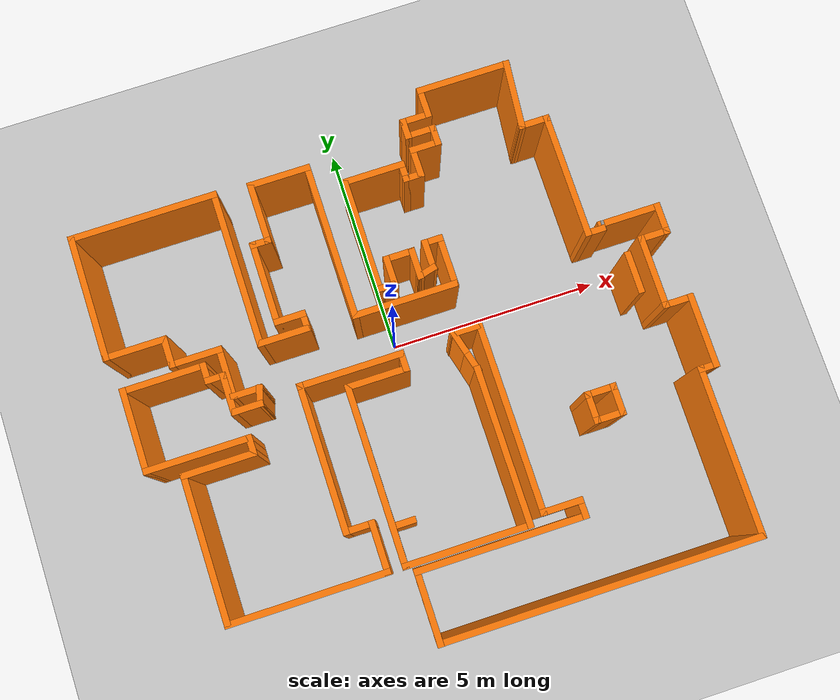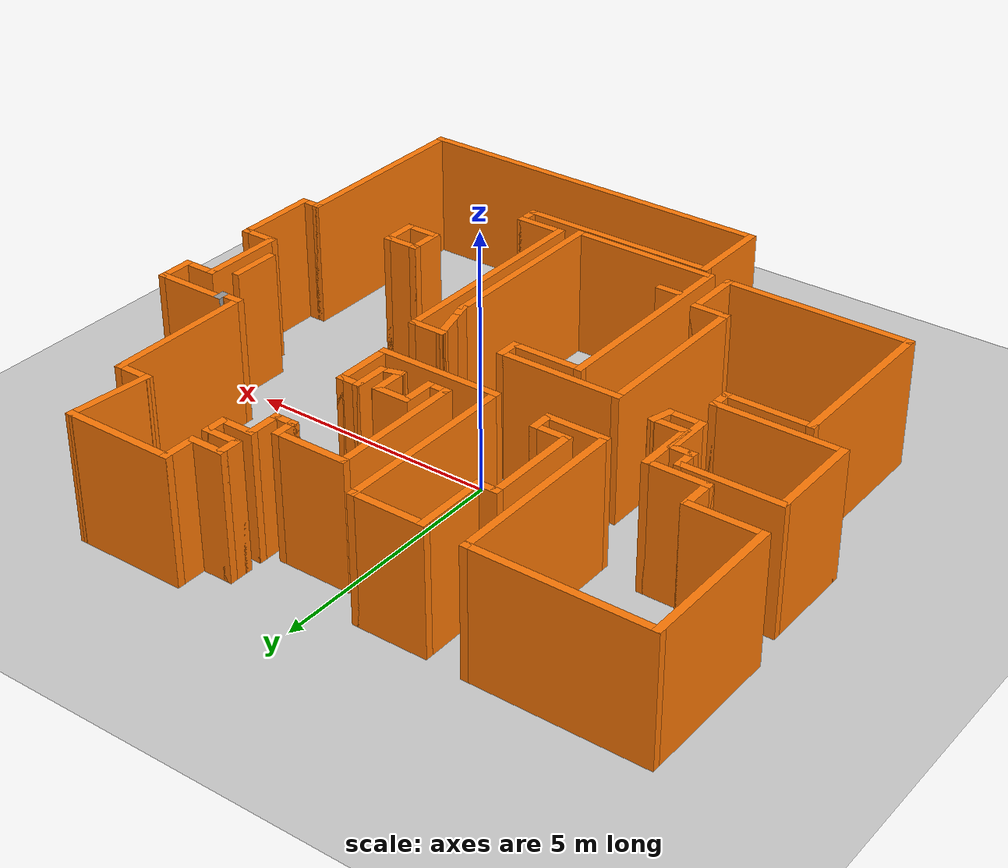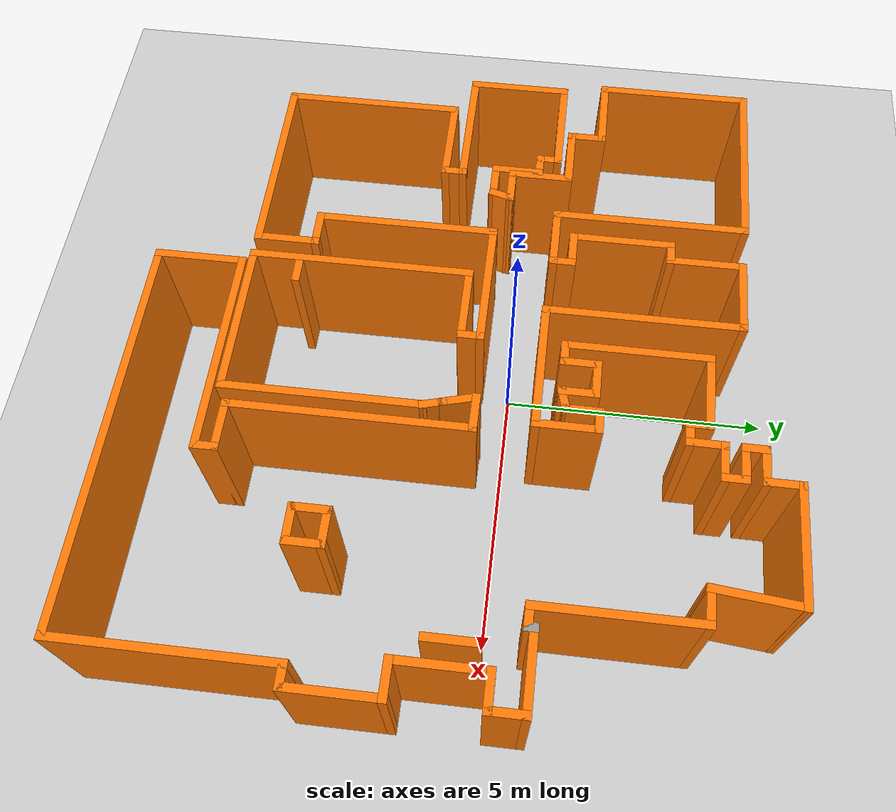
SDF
<sdf version="1.6">
 <world name="default">
  <model name="ground_plane">
   <static>1</static>
   <link name="link">
    <collision name="collision">
     <geometry><plane><normal>0 0 1</normal><size>100 100</size></plane></geometry>
     <surface>
      <contact><collide_bitmask>65535</collide_bitmask></contact>
      <friction><ode><mu>100</mu><mu2>50</mu2></ode></friction>
     </surface>
    </collision>
    <visual name="visual">
     <cast_shadows>0</cast_shadows>
     <geometry><plane><normal>0 0 1</normal><size>100 100</size></plane></geometry>
     <material>
      <script><uri>file://media/materials/scripts/gazebo.material</uri><name>Gazebo/Grey</name></script>
     </material>
    </visual>
   </link>
  </model>
  <model name="map_53">
   <pose>0.130645 -0.848309 0 0 -0 0</pose>
   <link name="Wall_0">
    <collision name="Wall_0_Collision">
     <geometry><box><size>2.25 0.15 2.5</size></box></geometry>
     <pose>0 0 1.25 0 -0 0</pose>
    </collision>
    <visual name="Wall_0_Visual">
     <pose>0 0 1.25 0 -0 0</pose>
     <geometry><box><size>2.25 0.15 2.5</size></box></geometry>
     <material>
      <script><uri>file://media/materials/scripts/gazebo.material</uri><name>Gazebo/Grey</name></script>
      <ambient>0.996078 0.47451 0.0196078 1</ambient>
     </material>
     <meta><layer>0</layer></meta>
    </visual>
    <pose>3.20516 5.96148 0 0 -0 3.14159</pose>
   </link>
   <link name="Wall_1">
    <collision name="Wall_1_Collision">
     <geometry><box><size>0.75 0.15 2.5</size></box></geometry>
     <pose>0 0 1.25 0 -0 0</pose>
    </collision>
    <visual name="Wall_1_Visual">
     <pose>0 0 1.25 0 -0 0</pose>
     <geometry><box><size>0.75 0.15 2.5</size></box></geometry>
     <material>
      <script><uri>file://media/materials/scripts/gazebo.material</uri><name>Gazebo/Grey</name></script>
      <ambient>0.996078 0.47451 0.0196078 1</ambient>
     </material>
     <meta><layer>0</layer></meta>
    </visual>
    <pose>2.15516 5.66148 0 0 -0 -1.5708</pose>
   </link>
   <link name="Wall_10">
    <collision name="Wall_10_Collision">
     <geometry><box><size>1.5 0.15 2.5</size></box></geometry>
     <pose>0 0 1.25 0 -0 0</pose>
    </collision>
    <visual name="Wall_10_Visual">
     <pose>0 0 1.25 0 -0 0</pose>
     <geometry><box><size>1.5 0.15 2.5</size></box></geometry>
     <material>
      <script><uri>file://media/materials/scripts/gazebo.material</uri><name>Gazebo/Grey</name></script>
      <ambient>0.996078 0.47451 0.0196078 1</ambient>
     </material>
     <meta><layer>0</layer></meta>
    </visual>
    <pose>0.530158 4.41148 0 0 -0 3.14159</pose>
   </link>
   <link name="Wall_100">
    <collision name="Wall_100_Collision">
     <geometry><box><size>0.75 0.15 2.5</size></box></geometry>
     <pose>0 0 1.25 0 -0 0</pose>
    </collision>
    <visual name="Wall_100_Visual">
     <pose>0 0 1.25 0 -0 0</pose>
     <geometry><box><size>0.75 0.15 2.5</size></box></geometry>
     <material>
      <script><uri>file://media/materials/scripts/gazebo.material</uri><name>Gazebo/Grey</name></script>
      <ambient>0.996078 0.47451 0.0196078 1</ambient>
     </material>
     <meta><layer>0</layer></meta>
    </visual>
    <pose>4.40677 4.43163 0 0 -0 3.14159</pose>
   </link>
   <link name="Wall_101">
    <collision name="Wall_101_Collision">
     <geometry><box><size>1.68704 0.15 2.5</size></box></geometry>
     <pose>0 0 1.25 0 -0 0</pose>
    </collision>
    <visual name="Wall_101_Visual">
     <pose>0 0 1.25 0 -0 0</pose>
     <geometry><box><size>1.68704 0.15 2.5</size></box></geometry>
     <material>
      <script><uri>file://media/materials/scripts/gazebo.material</uri><name>Gazebo/Grey</name></script>
      <ambient>0.996078 0.47451 0.0196078 1</ambient>
     </material>
     <meta><layer>0</layer></meta>
    </visual>
    <pose>4.18096 5.19656 0 0 -0 1.4741</pose>
   </link>
   <link name="Wall_103">
    <collision name="Wall_103_Collision">
     <geometry><box><size>0.75 0.15 2.5</size></box></geometry>
     <pose>0 0 1.25 0 -0 0</pose>
    </collision>
    <visual name="Wall_103_Visual">
     <pose>0 0 1.25 0 -0 0</pose>
     <geometry><box><size>0.75 0.15 2.5</size></box></geometry>
     <material>
      <script><uri>file://media/materials/scripts/gazebo.material</uri><name>Gazebo/Grey</name></script>
      <ambient>0.996078 0.47451 0.0196078 1</ambient>
     </material>
     <meta><layer>0</layer></meta>
    </visual>
    <pose>3.48375 -2.18558 0 0 -0 -1.5708</pose>
   </link>
   <link name="Wall_104">
    <collision name="Wall_104_Collision">
     <geometry><box><size>0.75 0.15 2.5</size></box></geometry>
     <pose>0 0 1.25 0 -0 0</pose>
    </collision>
    <visual name="Wall_104_Visual">
     <pose>0 0 1.25 0 -0 0</pose>
     <geometry><box><size>0.75 0.15 2.5</size></box></geometry>
     <material>
      <script><uri>file://media/materials/scripts/gazebo.material</uri><name>Gazebo/Grey</name></script>
      <ambient>0.996078 0.47451 0.0196078 1</ambient>
     </material>
     <meta><layer>0</layer></meta>
    </visual>
    <pose>3.78375 -2.48557 0 0 -0 0</pose>
   </link>
   <link name="Wall_105">
    <collision name="Wall_105_Collision">
     <geometry><box><size>0.75 0.15 2.5</size></box></geometry>
     <pose>0 0 1.25 0 -0 0</pose>
    </collision>
    <visual name="Wall_105_Visual">
     <pose>0 0 1.25 0 -0 0</pose>
     <geometry><box><size>0.75 0.15 2.5</size></box></geometry>
     <material>
      <script><uri>file://media/materials/scripts/gazebo.material</uri><name>Gazebo/Grey</name></script>
      <ambient>0.996078 0.47451 0.0196078 1</ambient>
     </material>
     <meta><layer>0</layer></meta>
    </visual>
    <pose>4.08375 -2.18558 0 0 -0 1.5708</pose>
   </link>
   <link name="Wall_106">
    <collision name="Wall_106_Collision">
     <geometry><box><size>0.75 0.15 2.5</size></box></geometry>
     <pose>0 0 1.25 0 -0 0</pose>
    </collision>
    <visual name="Wall_106_Visual">
     <pose>0 0 1.25 0 -0 0</pose>
     <geometry><box><size>0.75 0.15 2.5</size></box></geometry>
     <material>
      <script><uri>file://media/materials/scripts/gazebo.material</uri><name>Gazebo/Grey</name></script>
      <ambient>0.996078 0.47451 0.0196078 1</ambient>
     </material>
     <meta><layer>0</layer></meta>
    </visual>
    <pose>3.78375 -1.88558 0 0 -0 3.14159</pose>
   </link>
   <link name="Wall_108">
    <collision name="Wall_108_Collision">
     <geometry><box><size>1 0.15 2.5</size></box></geometry>
     <pose>0 0 1.25 0 -0 0</pose>
    </collision>
    <visual name="Wall_108_Visual">
     <pose>0 0 1.25 0 -0 0</pose>
     <geometry><box><size>1 0.15 2.5</size></box></geometry>
     <material>
      <script><uri>file://media/materials/scripts/gazebo.material</uri><name>Gazebo/Grey</name></script>
      <ambient>0.996078 0.47451 0.0196078 1</ambient>
     </material>
     <meta><layer>0</layer></meta>
    </visual>
    <pose>5.39897 0.402645 0 0 -0 -1.5708</pose>
   </link>
   <link name="Wall_110">
    <collision name="Wall_110_Collision">
     <geometry><box><size>0.5 0.15 2.5</size></box></geometry>
     <pose>0 0 1.25 0 -0 0</pose>
    </collision>
    <visual name="Wall_110_Visual">
     <pose>0 0 1.25 0 -0 0</pose>
     <geometry><box><size>0.5 0.15 2.5</size></box></geometry>
     <material>
      <script><uri>file://media/materials/scripts/gazebo.material</uri><name>Gazebo/Grey</name></script>
      <ambient>0.996078 0.47451 0.0196078 1</ambient>
     </material>
     <meta><layer>0</layer></meta>
    </visual>
    <pose>-1.20908 -3.29539 0 0 -0 0</pose>
   </link>
   <link name="Wall_19">
    <collision name="Wall_19_Collision">
     <geometry><box><size>2.75 0.15 2.5</size></box></geometry>
     <pose>0 0 1.25 0 -0 0</pose>
    </collision>
    <visual name="Wall_19_Visual">
     <pose>0 0 1.25 0 -0 0</pose>
     <geometry><box><size>2.75 0.15 2.5</size></box></geometry>
     <material>
      <script><uri>file://media/materials/scripts/gazebo.material</uri><name>Gazebo/Grey</name></script>
      <ambient>0.996078 0.47451 0.0196078 1</ambient>
     </material>
     <meta><layer>0</layer></meta>
    </visual>
    <pose>-0.144842 3.11148 0 0 -0 -1.5708</pose>
   </link>
   <link name="Wall_2">
    <collision name="Wall_2_Collision">
     <geometry><box><size>0.75 0.15 2.5</size></box></geometry>
     <pose>0 0 1.25 0 -0 0</pose>
    </collision>
    <visual name="Wall_2_Visual">
     <pose>0 0 1.25 0 -0 0</pose>
     <geometry><box><size>0.75 0.15 2.5</size></box></geometry>
     <material>
      <script><uri>file://media/materials/scripts/gazebo.material</uri><name>Gazebo/Grey</name></script>
      <ambient>0.996078 0.47451 0.0196078 1</ambient>
     </material>
     <meta><layer>0</layer></meta>
    </visual>
    <pose>1.85516 5.36148 0 0 -0 3.14159</pose>
   </link>
   <link name="Wall_20">
    <collision name="Wall_20_Collision">
     <geometry><box><size>0.5 0.15 2.5</size></box></geometry>
     <pose>0 0 1.25 0 -0 0</pose>
    </collision>
    <visual name="Wall_20_Visual">
     <pose>0 0 1.25 0 -0 0</pose>
     <geometry><box><size>0.5 0.15 2.5</size></box></geometry>
     <material>
      <script><uri>file://media/materials/scripts/gazebo.material</uri><name>Gazebo/Grey</name></script>
      <ambient>0.996078 0.47451 0.0196078 1</ambient>
     </material>
     <meta><layer>0</layer></meta>
    </visual>
    <pose>0.030158 1.81148 0 0 -0 0</pose>
   </link>
   <link name="Wall_21">
    <collision name="Wall_21_Collision">
     <geometry><box><size>0.75 0.15 2.5</size></box></geometry>
     <pose>0 0 1.25 0 -0 0</pose>
    </collision>
    <visual name="Wall_21_Visual">
     <pose>0 0 1.25 0 -0 0</pose>
     <geometry><box><size>0.75 0.15 2.5</size></box></geometry>
     <material>
      <script><uri>file://media/materials/scripts/gazebo.material</uri><name>Gazebo/Grey</name></script>
      <ambient>0.996078 0.47451 0.0196078 1</ambient>
     </material>
     <meta><layer>0</layer></meta>
    </visual>
    <pose>0.205158 2.11148 0 0 -0 1.5708</pose>
   </link>
   <link name="Wall_22">
    <collision name="Wall_22_Collision">
     <geometry><box><size>0.75 0.15 2.5</size></box></geometry>
     <pose>0 0 1.25 0 -0 0</pose>
    </collision>
    <visual name="Wall_22_Visual">
     <pose>0 0 1.25 0 -0 0</pose>
     <geometry><box><size>0.75 0.15 2.5</size></box></geometry>
     <material>
      <script><uri>file://media/materials/scripts/gazebo.material</uri><name>Gazebo/Grey</name></script>
      <ambient>0.996078 0.47451 0.0196078 1</ambient>
     </material>
     <meta><layer>0</layer></meta>
    </visual>
    <pose>0.505158 2.41148 0 0 -0 0</pose>
   </link>
   <link name="Wall_23">
    <collision name="Wall_23_Collision">
     <geometry><box><size>0.75 0.15 2.5</size></box></geometry>
     <pose>0 0 1.25 0 -0 0</pose>
    </collision>
    <visual name="Wall_23_Visual">
     <pose>0 0 1.25 0 -0 0</pose>
     <geometry><box><size>0.75 0.15 2.5</size></box></geometry>
     <material>
      <script><uri>file://media/materials/scripts/gazebo.material</uri><name>Gazebo/Grey</name></script>
      <ambient>0.996078 0.47451 0.0196078 1</ambient>
     </material>
     <meta><layer>0</layer></meta>
    </visual>
    <pose>0.805158 2.11148 0 0 -0 -1.5708</pose>
   </link>
   <link name="Wall_24">
    <collision name="Wall_24_Collision">
     <geometry><box><size>0.5 0.15 2.5</size></box></geometry>
     <pose>0 0 1.25 0 -0 0</pose>
    </collision>
    <visual name="Wall_24_Visual">
     <pose>0 0 1.25 0 -0 0</pose>
     <geometry><box><size>0.5 0.15 2.5</size></box></geometry>
     <material>
      <script><uri>file://media/materials/scripts/gazebo.material</uri><name>Gazebo/Grey</name></script>
      <ambient>0.996078 0.47451 0.0196078 1</ambient>
     </material>
     <meta><layer>0</layer></meta>
    </visual>
    <pose>0.974195 1.85678 0 0 -0 0.261799</pose>
   </link>
   <link name="Wall_27">
    <collision name="Wall_27_Collision">
     <geometry><box><size>0.75 0.15 2.5</size></box></geometry>
     <pose>0 0 1.25 0 -0 0</pose>
    </collision>
    <visual name="Wall_27_Visual">
     <pose>0 0 1.25 0 -0 0</pose>
     <geometry><box><size>0.75 0.15 2.5</size></box></geometry>
     <material>
      <script><uri>file://media/materials/scripts/gazebo.material</uri><name>Gazebo/Grey</name></script>
      <ambient>0.996078 0.47451 0.0196078 1</ambient>
     </material>
     <meta><layer>0</layer></meta>
    </visual>
    <pose>1.14323 2.20207 0 0 -0 1.5708</pose>
   </link>
   <link name="Wall_28">
    <collision name="Wall_28_Collision">
     <geometry><box><size>0.5 0.15 2.5</size></box></geometry>
     <pose>0 0 1.25 0 -0 0</pose>
    </collision>
    <visual name="Wall_28_Visual">
     <pose>0 0 1.25 0 -0 0</pose>
     <geometry><box><size>0.5 0.15 2.5</size></box></geometry>
     <material>
      <script><uri>file://media/materials/scripts/gazebo.material</uri><name>Gazebo/Grey</name></script>
      <ambient>0.996078 0.47451 0.0196078 1</ambient>
     </material>
     <meta><layer>0</layer></meta>
    </visual>
    <pose>1.31823 2.50207 0 0 -0 0</pose>
   </link>
   <link name="Wall_29">
    <collision name="Wall_29_Collision">
     <geometry><box><size>1.25 0.15 2.5</size></box></geometry>
     <pose>0 0 1.25 0 -0 0</pose>
    </collision>
    <visual name="Wall_29_Visual">
     <pose>0 0 1.25 0 -0 0</pose>
     <geometry><box><size>1.25 0.15 2.5</size></box></geometry>
     <material>
      <script><uri>file://media/materials/scripts/gazebo.material</uri><name>Gazebo/Grey</name></script>
      <ambient>0.996078 0.47451 0.0196078 1</ambient>
     </material>
     <meta><layer>0</layer></meta>
    </visual>
    <pose>1.49323 1.95207 0 0 -0 -1.5708</pose>
   </link>
   <link name="Wall_3">
    <collision name="Wall_3_Collision">
     <geometry><box><size>0.5 0.15 2.5</size></box></geometry>
     <pose>0 0 1.25 0 -0 0</pose>
    </collision>
    <visual name="Wall_3_Visual">
     <pose>0 0 1.25 0 -0 0</pose>
     <geometry><box><size>0.5 0.15 2.5</size></box></geometry>
     <material>
      <script><uri>file://media/materials/scripts/gazebo.material</uri><name>Gazebo/Grey</name></script>
      <ambient>0.996078 0.47451 0.0196078 1</ambient>
     </material>
     <meta><layer>0</layer></meta>
    </visual>
    <pose>1.55516 5.18648 0 0 -0 -1.5708</pose>
   </link>
   <link name="Wall_30">
    <collision name="Wall_30_Collision">
     <geometry><box><size>2.5 0.15 2.5</size></box></geometry>
     <pose>0 0 1.25 0 -0 0</pose>
    </collision>
    <visual name="Wall_30_Visual">
     <pose>0 0 1.25 0 -0 0</pose>
     <geometry><box><size>2.5 0.15 2.5</size></box></geometry>
     <material>
      <script><uri>file://media/materials/scripts/gazebo.material</uri><name>Gazebo/Grey</name></script>
      <ambient>0.996078 0.47451 0.0196078 1</ambient>
     </material>
     <meta><layer>0</layer></meta>
    </visual>
    <pose>0.318232 1.40207 0 0 -0 3.14159</pose>
   </link>
   <link name="Wall_31">
    <collision name="Wall_31_Collision">
     <geometry><box><size>3.75 0.15 2.5</size></box></geometry>
     <pose>0 0 1.25 0 -0 0</pose>
    </collision>
    <visual name="Wall_31_Visual">
     <pose>0 0 1.25 0 -0 0</pose>
     <geometry><box><size>3.75 0.15 2.5</size></box></geometry>
     <material>
      <script><uri>file://media/materials/scripts/gazebo.material</uri><name>Gazebo/Grey</name></script>
      <ambient>0.996078 0.47451 0.0196078 1</ambient>
     </material>
     <meta><layer>0</layer></meta>
    </visual>
    <pose>-0.856768 3.20207 0 0 -0 1.5708</pose>
   </link>
   <link name="Wall_32">
    <collision name="Wall_32_Collision">
     <geometry><box><size>1.5 0.15 2.5</size></box></geometry>
     <pose>0 0 1.25 0 -0 0</pose>
    </collision>
    <visual name="Wall_32_Visual">
     <pose>0 0 1.25 0 -0 0</pose>
     <geometry><box><size>1.5 0.15 2.5</size></box></geometry>
     <material>
      <script><uri>file://media/materials/scripts/gazebo.material</uri><name>Gazebo/Grey</name></script>
      <ambient>0.996078 0.47451 0.0196078 1</ambient>
     </material>
     <meta><layer>0</layer></meta>
    </visual>
    <pose>-1.53177 5.00207 0 0 -0 3.14159</pose>
   </link>
   <link name="Wall_39">
    <collision name="Wall_39_Collision">
     <geometry><box><size>1.5 0.15 2.5</size></box></geometry>
     <pose>0 0 1.25 0 -0 0</pose>
    </collision>
    <visual name="Wall_39_Visual">
     <pose>0 0 1.25 0 -0 0</pose>
     <geometry><box><size>1.5 0.15 2.5</size></box></geometry>
     <material>
      <script><uri>file://media/materials/scripts/gazebo.material</uri><name>Gazebo/Grey</name></script>
      <ambient>0.996078 0.47451 0.0196078 1</ambient>
     </material>
     <meta><layer>0</layer></meta>
    </visual>
    <pose>-2.20677 4.32707 0 0 -0 -1.5708</pose>
   </link>
   <link name="Wall_4">
    <collision name="Wall_4_Collision">
     <geometry><box><size>0.75 0.15 2.5</size></box></geometry>
     <pose>0 0 1.25 0 -0 0</pose>
    </collision>
    <visual name="Wall_4_Visual">
     <pose>0 0 1.25 0 -0 0</pose>
     <geometry><box><size>0.75 0.15 2.5</size></box></geometry>
     <material>
      <script><uri>file://media/materials/scripts/gazebo.material</uri><name>Gazebo/Grey</name></script>
      <ambient>0.996078 0.47451 0.0196078 1</ambient>
     </material>
     <meta><layer>0</layer></meta>
    </visual>
    <pose>1.85516 5.01148 0 0 -0 0</pose>
   </link>
   <link name="Wall_40">
    <collision name="Wall_40_Collision">
     <geometry><box><size>0.5 0.15 2.5</size></box></geometry>
     <pose>0 0 1.25 0 -0 0</pose>
    </collision>
    <visual name="Wall_40_Visual">
     <pose>0 0 1.25 0 -0 0</pose>
     <geometry><box><size>0.5 0.15 2.5</size></box></geometry>
     <material>
      <script><uri>file://media/materials/scripts/gazebo.material</uri><name>Gazebo/Grey</name></script>
      <ambient>0.996078 0.47451 0.0196078 1</ambient>
     </material>
     <meta><layer>0</layer></meta>
    </visual>
    <pose>-2.38177 3.65207 0 0 -0 3.14159</pose>
   </link>
   <link name="Wall_41">
    <collision name="Wall_41_Collision">
     <geometry><box><size>2 0.15 2.5</size></box></geometry>
     <pose>0 0 1.25 0 -0 0</pose>
    </collision>
    <visual name="Wall_41_Visual">
     <pose>0 0 1.25 0 -0 0</pose>
     <geometry><box><size>2 0.15 2.5</size></box></geometry>
     <material>
      <script><uri>file://media/materials/scripts/gazebo.material</uri><name>Gazebo/Grey</name></script>
      <ambient>0.996078 0.47451 0.0196078 1</ambient>
     </material>
     <meta><layer>0</layer></meta>
    </visual>
    <pose>-2.55677 2.72707 0 0 -0 -1.5708</pose>
   </link>
   <link name="Wall_42">
    <collision name="Wall_42_Collision">
     <geometry><box><size>0.75 0.15 2.5</size></box></geometry>
     <pose>0 0 1.25 0 -0 0</pose>
    </collision>
    <visual name="Wall_42_Visual">
     <pose>0 0 1.25 0 -0 0</pose>
     <geometry><box><size>0.75 0.15 2.5</size></box></geometry>
     <material>
      <script><uri>file://media/materials/scripts/gazebo.material</uri><name>Gazebo/Grey</name></script>
      <ambient>0.996078 0.47451 0.0196078 1</ambient>
     </material>
     <meta><layer>0</layer></meta>
    </visual>
    <pose>-2.25677 1.80207 0 0 -0 0</pose>
   </link>
   <link name="Wall_43">
    <collision name="Wall_43_Collision">
     <geometry><box><size>0.5 0.15 2.5</size></box></geometry>
     <pose>0 0 1.25 0 -0 0</pose>
    </collision>
    <visual name="Wall_43_Visual">
     <pose>0 0 1.25 0 -0 0</pose>
     <geometry><box><size>0.5 0.15 2.5</size></box></geometry>
     <material>
      <script><uri>file://media/materials/scripts/gazebo.material</uri><name>Gazebo/Grey</name></script>
      <ambient>0.996078 0.47451 0.0196078 1</ambient>
     </material>
     <meta><layer>0</layer></meta>
    </visual>
    <pose>-1.95677 1.62707 0 0 -0 -1.5708</pose>
   </link>
   <link name="Wall_44">
    <collision name="Wall_44_Collision">
     <geometry><box><size>1.25 0.15 2.5</size></box></geometry>
     <pose>0 0 1.25 0 -0 0</pose>
    </collision>
    <visual name="Wall_44_Visual">
     <pose>0 0 1.25 0 -0 0</pose>
     <geometry><box><size>1.25 0.15 2.5</size></box></geometry>
     <material>
      <script><uri>file://media/materials/scripts/gazebo.material</uri><name>Gazebo/Grey</name></script>
      <ambient>0.996078 0.47451 0.0196078 1</ambient>
     </material>
     <meta><layer>0</layer></meta>
    </visual>
    <pose>-2.50677 1.45207 0 0 -0 3.14159</pose>
   </link>
   <link name="Wall_45">
    <collision name="Wall_45_Collision">
     <geometry><box><size>3.75 0.15 2.5</size></box></geometry>
     <pose>0 0 1.25 0 -0 0</pose>
    </collision>
    <visual name="Wall_45_Visual">
     <pose>0 0 1.25 0 -0 0</pose>
     <geometry><box><size>3.75 0.15 2.5</size></box></geometry>
     <material>
      <script><uri>file://media/materials/scripts/gazebo.material</uri><name>Gazebo/Grey</name></script>
      <ambient>0.996078 0.47451 0.0196078 1</ambient>
     </material>
     <meta><layer>0</layer></meta>
    </visual>
    <pose>-3.05677 3.25207 0 0 -0 1.5708</pose>
   </link>
   <link name="Wall_46">
    <collision name="Wall_46_Collision">
     <geometry><box><size>3.5 0.15 2.5</size></box></geometry>
     <pose>0 0 1.25 0 -0 0</pose>
    </collision>
    <visual name="Wall_46_Visual">
     <pose>0 0 1.25 0 -0 0</pose>
     <geometry><box><size>3.5 0.15 2.5</size></box></geometry>
     <material>
      <script><uri>file://media/materials/scripts/gazebo.material</uri><name>Gazebo/Grey</name></script>
      <ambient>0.996078 0.47451 0.0196078 1</ambient>
     </material>
     <meta><layer>0</layer></meta>
    </visual>
    <pose>-4.73177 5.05207 0 0 -0 3.14159</pose>
   </link>
   <link name="Wall_47">
    <collision name="Wall_47_Collision">
     <geometry><box><size>3 0.15 2.5</size></box></geometry>
     <pose>0 0 1.25 0 -0 0</pose>
    </collision>
    <visual name="Wall_47_Visual">
     <pose>0 0 1.25 0 -0 0</pose>
     <geometry><box><size>3 0.15 2.5</size></box></geometry>
     <material>
      <script><uri>file://media/materials/scripts/gazebo.material</uri><name>Gazebo/Grey</name></script>
      <ambient>0.996078 0.47451 0.0196078 1</ambient>
     </material>
     <meta><layer>0</layer></meta>
    </visual>
    <pose>-6.40677 3.62707 0 0 -0 -1.5708</pose>
   </link>
   <link name="Wall_48">
    <collision name="Wall_48_Collision">
     <geometry><box><size>1.5 0.15 2.5</size></box></geometry>
     <pose>0 0 1.25 0 -0 0</pose>
    </collision>
    <visual name="Wall_48_Visual">
     <pose>0 0 1.25 0 -0 0</pose>
     <geometry><box><size>1.5 0.15 2.5</size></box></geometry>
     <material>
      <script><uri>file://media/materials/scripts/gazebo.material</uri><name>Gazebo/Grey</name></script>
      <ambient>0.996078 0.47451 0.0196078 1</ambient>
     </material>
     <meta><layer>0</layer></meta>
    </visual>
    <pose>-5.73177 2.20207 0 0 -0 0</pose>
   </link>
   <link name="Wall_49">
    <collision name="Wall_49_Collision">
     <geometry><box><size>0.75 0.15 2.5</size></box></geometry>
     <pose>0 0 1.25 0 -0 0</pose>
    </collision>
    <visual name="Wall_49_Visual">
     <pose>0 0 1.25 0 -0 0</pose>
     <geometry><box><size>0.75 0.15 2.5</size></box></geometry>
     <material>
      <script><uri>file://media/materials/scripts/gazebo.material</uri><name>Gazebo/Grey</name></script>
      <ambient>0.996078 0.47451 0.0196078 1</ambient>
     </material>
     <meta><layer>0</layer></meta>
    </visual>
    <pose>-5.05677 1.90207 0 0 -0 -1.5708</pose>
   </link>
   <link name="Wall_5">
    <collision name="Wall_5_Collision">
     <geometry><box><size>0.5 0.15 2.5</size></box></geometry>
     <pose>0 0 1.25 0 -0 0</pose>
    </collision>
    <visual name="Wall_5_Visual">
     <pose>0 0 1.25 0 -0 0</pose>
     <geometry><box><size>0.5 0.15 2.5</size></box></geometry>
     <material>
      <script><uri>file://media/materials/scripts/gazebo.material</uri><name>Gazebo/Grey</name></script>
      <ambient>0.996078 0.47451 0.0196078 1</ambient>
     </material>
     <meta><layer>0</layer></meta>
    </visual>
    <pose>2.15516 4.83648 0 0 -0 -1.5708</pose>
   </link>
   <link name="Wall_50">
    <collision name="Wall_50_Collision">
     <geometry><box><size>1.25 0.15 2.5</size></box></geometry>
     <pose>0 0 1.25 0 -0 0</pose>
    </collision>
    <visual name="Wall_50_Visual">
     <pose>0 0 1.25 0 -0 0</pose>
     <geometry><box><size>1.25 0.15 2.5</size></box></geometry>
     <material>
      <script><uri>file://media/materials/scripts/gazebo.material</uri><name>Gazebo/Grey</name></script>
      <ambient>0.996078 0.47451 0.0196078 1</ambient>
     </material>
     <meta><layer>0</layer></meta>
    </visual>
    <pose>-4.50677 1.60207 0 0 -0 0</pose>
   </link>
   <link name="Wall_51">
    <collision name="Wall_51_Collision">
     <geometry><box><size>1.25 0.15 2.5</size></box></geometry>
     <pose>0 0 1.25 0 -0 0</pose>
    </collision>
    <visual name="Wall_51_Visual">
     <pose>0 0 1.25 0 -0 0</pose>
     <geometry><box><size>1.25 0.15 2.5</size></box></geometry>
     <material>
      <script><uri>file://media/materials/scripts/gazebo.material</uri><name>Gazebo/Grey</name></script>
      <ambient>0.996078 0.47451 0.0196078 1</ambient>
     </material>
     <meta><layer>0</layer></meta>
    </visual>
    <pose>-3.95677 1.05207 0 0 -0 -1.5708</pose>
   </link>
   <link name="Wall_52">
    <collision name="Wall_52_Collision">
     <geometry><box><size>0.75 0.15 2.5</size></box></geometry>
     <pose>0 0 1.25 0 -0 0</pose>
    </collision>
    <visual name="Wall_52_Visual">
     <pose>0 0 1.25 0 -0 0</pose>
     <geometry><box><size>0.75 0.15 2.5</size></box></geometry>
     <material>
      <script><uri>file://media/materials/scripts/gazebo.material</uri><name>Gazebo/Grey</name></script>
      <ambient>0.996078 0.47451 0.0196078 1</ambient>
     </material>
     <meta><layer>0</layer></meta>
    </visual>
    <pose>-3.65677 0.50207 0 0 -0 0</pose>
   </link>
   <link name="Wall_53">
    <collision name="Wall_53_Collision">
     <geometry><box><size>0.5 0.15 2.5</size></box></geometry>
     <pose>0 0 1.25 0 -0 0</pose>
    </collision>
    <visual name="Wall_53_Visual">
     <pose>0 0 1.25 0 -0 0</pose>
     <geometry><box><size>0.5 0.15 2.5</size></box></geometry>
     <material>
      <script><uri>file://media/materials/scripts/gazebo.material</uri><name>Gazebo/Grey</name></script>
      <ambient>0.996078 0.47451 0.0196078 1</ambient>
     </material>
     <meta><layer>0</layer></meta>
    </visual>
    <pose>-3.40206 0.333033 0 0 -0 -1.8326</pose>
   </link>
   <link name="Wall_54">
    <collision name="Wall_54_Collision">
     <geometry><box><size>0.75 0.15 2.5</size></box></geometry>
     <pose>0 0 1.25 0 -0 0</pose>
    </collision>
    <visual name="Wall_54_Visual">
     <pose>0 0 1.25 0 -0 0</pose>
     <geometry><box><size>0.75 0.15 2.5</size></box></geometry>
     <material>
      <script><uri>file://media/materials/scripts/gazebo.material</uri><name>Gazebo/Grey</name></script>
      <ambient>0.996078 0.47451 0.0196078 1</ambient>
     </material>
     <meta><layer>0</layer></meta>
    </visual>
    <pose>-3.74735 0.163996 0 0 -0 3.14159</pose>
   </link>
   <link name="Wall_55">
    <collision name="Wall_55_Collision">
     <geometry><box><size>1 0.15 2.5</size></box></geometry>
     <pose>0 0 1.25 0 -0 0</pose>
    </collision>
    <visual name="Wall_55_Visual">
     <pose>0 0 1.25 0 -0 0</pose>
     <geometry><box><size>1 0.15 2.5</size></box></geometry>
     <material>
      <script><uri>file://media/materials/scripts/gazebo.material</uri><name>Gazebo/Grey</name></script>
      <ambient>0.996078 0.47451 0.0196078 1</ambient>
     </material>
     <meta><layer>0</layer></meta>
    </visual>
    <pose>-4.04735 0.588996 0 0 -0 1.5708</pose>
   </link>
   <link name="Wall_56">
    <collision name="Wall_56_Collision">
     <geometry><box><size>0.5 0.15 2.5</size></box></geometry>
     <pose>0 0 1.25 0 -0 0</pose>
    </collision>
    <visual name="Wall_56_Visual">
     <pose>0 0 1.25 0 -0 0</pose>
     <geometry><box><size>0.5 0.15 2.5</size></box></geometry>
     <material>
      <script><uri>file://media/materials/scripts/gazebo.material</uri><name>Gazebo/Grey</name></script>
      <ambient>0.996078 0.47451 0.0196078 1</ambient>
     </material>
     <meta><layer>0</layer></meta>
    </visual>
    <pose>-4.22236 1.014 0 0 -0 3.14159</pose>
   </link>
   <link name="Wall_57">
    <collision name="Wall_57_Collision">
     <geometry><box><size>0.5 0.15 2.5</size></box></geometry>
     <pose>0 0 1.25 0 -0 0</pose>
    </collision>
    <visual name="Wall_57_Visual">
     <pose>0 0 1.25 0 -0 0</pose>
     <geometry><box><size>0.5 0.15 2.5</size></box></geometry>
     <material>
      <script><uri>file://media/materials/scripts/gazebo.material</uri><name>Gazebo/Grey</name></script>
      <ambient>0.996078 0.47451 0.0196078 1</ambient>
     </material>
     <meta><layer>0</layer></meta>
    </visual>
    <pose>-4.39736 1.189 0 0 -0 1.5708</pose>
   </link>
   <link name="Wall_58">
    <collision name="Wall_58_Collision">
     <geometry><box><size>2 0.15 2.5</size></box></geometry>
     <pose>0 0 1.25 0 -0 0</pose>
    </collision>
    <visual name="Wall_58_Visual">
     <pose>0 0 1.25 0 -0 0</pose>
     <geometry><box><size>2 0.15 2.5</size></box></geometry>
     <material>
      <script><uri>file://media/materials/scripts/gazebo.material</uri><name>Gazebo/Grey</name></script>
      <ambient>0.996078 0.47451 0.0196078 1</ambient>
     </material>
     <meta><layer>0</layer></meta>
    </visual>
    <pose>-5.32235 1.364 0 0 -0 3.14159</pose>
   </link>
   <link name="Wall_59">
    <collision name="Wall_59_Collision">
     <geometry><box><size>2 0.15 2.5</size></box></geometry>
     <pose>0 0 1.25 0 -0 0</pose>
    </collision>
    <visual name="Wall_59_Visual">
     <pose>0 0 1.25 0 -0 0</pose>
     <geometry><box><size>2 0.15 2.5</size></box></geometry>
     <material>
      <script><uri>file://media/materials/scripts/gazebo.material</uri><name>Gazebo/Grey</name></script>
      <ambient>0.996078 0.47451 0.0196078 1</ambient>
     </material>
     <meta><layer>0</layer></meta>
    </visual>
    <pose>-6.24735 0.438996 0 0 -0 -1.5708</pose>
   </link>
   <link name="Wall_6">
    <collision name="Wall_6_Collision">
     <geometry><box><size>0.75 0.15 2.5</size></box></geometry>
     <pose>0 0 1.25 0 -0 0</pose>
    </collision>
    <visual name="Wall_6_Visual">
     <pose>0 0 1.25 0 -0 0</pose>
     <geometry><box><size>0.75 0.15 2.5</size></box></geometry>
     <material>
      <script><uri>file://media/materials/scripts/gazebo.material</uri><name>Gazebo/Grey</name></script>
      <ambient>0.996078 0.47451 0.0196078 1</ambient>
     </material>
     <meta><layer>0</layer></meta>
    </visual>
    <pose>1.85516 4.66148 0 0 -0 3.14159</pose>
   </link>
   <link name="Wall_60">
    <collision name="Wall_60_Collision">
     <geometry><box><size>2.5 0.15 2.5</size></box></geometry>
     <pose>0 0 1.25 0 -0 0</pose>
    </collision>
    <visual name="Wall_60_Visual">
     <pose>0 0 1.25 0 -0 0</pose>
     <geometry><box><size>2.5 0.15 2.5</size></box></geometry>
     <material>
      <script><uri>file://media/materials/scripts/gazebo.material</uri><name>Gazebo/Grey</name></script>
      <ambient>0.996078 0.47451 0.0196078 1</ambient>
     </material>
     <meta><layer>0</layer></meta>
    </visual>
    <pose>-5.07235 -0.486004 0 0 -0 0</pose>
   </link>
   <link name="Wall_61">
    <collision name="Wall_61_Collision">
     <geometry><box><size>0.5 0.15 2.5</size></box></geometry>
     <pose>0 0 1.25 0 -0 0</pose>
    </collision>
    <visual name="Wall_61_Visual">
     <pose>0 0 1.25 0 -0 0</pose>
     <geometry><box><size>0.5 0.15 2.5</size></box></geometry>
     <material>
      <script><uri>file://media/materials/scripts/gazebo.material</uri><name>Gazebo/Grey</name></script>
      <ambient>0.996078 0.47451 0.0196078 1</ambient>
     </material>
     <meta><layer>0</layer></meta>
    </visual>
    <pose>-3.89736 -0.661004 0 0 -0 -1.5708</pose>
   </link>
   <link name="Wall_62">
    <collision name="Wall_62_Collision">
     <geometry><box><size>1.75 0.15 2.5</size></box></geometry>
     <pose>0 0 1.25 0 -0 0</pose>
    </collision>
    <visual name="Wall_62_Visual">
     <pose>0 0 1.25 0 -0 0</pose>
     <geometry><box><size>1.75 0.15 2.5</size></box></geometry>
     <material>
      <script><uri>file://media/materials/scripts/gazebo.material</uri><name>Gazebo/Grey</name></script>
      <ambient>0.996078 0.47451 0.0196078 1</ambient>
     </material>
     <meta><layer>0</layer></meta>
    </visual>
    <pose>-4.69735 -0.836004 0 0 -0 3.14159</pose>
   </link>
   <link name="Wall_63">
    <collision name="Wall_63_Collision">
     <geometry><box><size>3.5 0.15 2.5</size></box></geometry>
     <pose>0 0 1.25 0 -0 0</pose>
    </collision>
    <visual name="Wall_63_Visual">
     <pose>0 0 1.25 0 -0 0</pose>
     <geometry><box><size>3.5 0.15 2.5</size></box></geometry>
     <material>
      <script><uri>file://media/materials/scripts/gazebo.material</uri><name>Gazebo/Grey</name></script>
      <ambient>0.996078 0.47451 0.0196078 1</ambient>
     </material>
     <meta><layer>0</layer></meta>
    </visual>
    <pose>-5.49735 -2.511 0 0 -0 -1.5708</pose>
   </link>
   <link name="Wall_64">
    <collision name="Wall_64_Collision">
     <geometry><box><size>3.75 0.15 2.5</size></box></geometry>
     <pose>0 0 1.25 0 -0 0</pose>
    </collision>
    <visual name="Wall_64_Visual">
     <pose>0 0 1.25 0 -0 0</pose>
     <geometry><box><size>3.75 0.15 2.5</size></box></geometry>
     <material>
      <script><uri>file://media/materials/scripts/gazebo.material</uri><name>Gazebo/Grey</name></script>
      <ambient>0.996078 0.47451 0.0196078 1</ambient>
     </material>
     <meta><layer>0</layer></meta>
    </visual>
    <pose>-3.69735 -4.186 0 0 -0 0</pose>
   </link>
   <link name="Wall_65">
    <collision name="Wall_65_Collision">
     <geometry><box><size>1.25 0.15 2.5</size></box></geometry>
     <pose>0 0 1.25 0 -0 0</pose>
    </collision>
    <visual name="Wall_65_Visual">
     <pose>0 0 1.25 0 -0 0</pose>
     <geometry><box><size>1.25 0.15 2.5</size></box></geometry>
     <material>
      <script><uri>file://media/materials/scripts/gazebo.material</uri><name>Gazebo/Grey</name></script>
      <ambient>0.996078 0.47451 0.0196078 1</ambient>
     </material>
     <meta><layer>0</layer></meta>
    </visual>
    <pose>-1.89735 -3.636 0 0 -0 1.5708</pose>
   </link>
   <link name="Wall_66">
    <collision name="Wall_66_Collision">
     <geometry><box><size>0.75 0.15 2.5</size></box></geometry>
     <pose>0 0 1.25 0 -0 0</pose>
    </collision>
    <visual name="Wall_66_Visual">
     <pose>0 0 1.25 0 -0 0</pose>
     <geometry><box><size>0.75 0.15 2.5</size></box></geometry>
     <material>
      <script><uri>file://media/materials/scripts/gazebo.material</uri><name>Gazebo/Grey</name></script>
      <ambient>0.996078 0.47451 0.0196078 1</ambient>
     </material>
     <meta><layer>0</layer></meta>
    </visual>
    <pose>-2.19735 -3.086 0 0 -0 3.14159</pose>
   </link>
   <link name="Wall_67">
    <collision name="Wall_67_Collision">
     <geometry><box><size>3.5 0.15 2.5</size></box></geometry>
     <pose>0 0 1.25 0 -0 0</pose>
    </collision>
    <visual name="Wall_67_Visual">
     <pose>0 0 1.25 0 -0 0</pose>
     <geometry><box><size>3.5 0.15 2.5</size></box></geometry>
     <material>
      <script><uri>file://media/materials/scripts/gazebo.material</uri><name>Gazebo/Grey</name></script>
      <ambient>0.996078 0.47451 0.0196078 1</ambient>
     </material>
     <meta><layer>0</layer></meta>
    </visual>
    <pose>-2.49735 -1.411 0 0 -0 1.5708</pose>
   </link>
   <link name="Wall_7">
    <collision name="Wall_7_Collision">
     <geometry><box><size>0.75 0.15 2.5</size></box></geometry>
     <pose>0 0 1.25 0 -0 0</pose>
    </collision>
    <visual name="Wall_7_Visual">
     <pose>0 0 1.25 0 -0 0</pose>
     <geometry><box><size>0.75 0.15 2.5</size></box></geometry>
     <material>
      <script><uri>file://media/materials/scripts/gazebo.material</uri><name>Gazebo/Grey</name></script>
      <ambient>0.996078 0.47451 0.0196078 1</ambient>
     </material>
     <meta><layer>0</layer></meta>
    </visual>
    <pose>1.55516 4.36148 0 0 -0 -1.5708</pose>
   </link>
   <link name="Wall_72">
    <collision name="Wall_72_Collision">
     <geometry><box><size>2.5 0.15 2.5</size></box></geometry>
     <pose>0 0 1.25 0 -0 0</pose>
    </collision>
    <visual name="Wall_72_Visual">
     <pose>0 0 1.25 0 -0 0</pose>
     <geometry><box><size>2.5 0.15 2.5</size></box></geometry>
     <material>
      <script><uri>file://media/materials/scripts/gazebo.material</uri><name>Gazebo/Grey</name></script>
      <ambient>0.996078 0.47451 0.0196078 1</ambient>
     </material>
     <meta><layer>0</layer></meta>
    </visual>
    <pose>-1.32235 0.263996 0 0 -0 0</pose>
   </link>
   <link name="Wall_73">
    <collision name="Wall_73_Collision">
     <geometry><box><size>0.5 0.15 2.5</size></box></geometry>
     <pose>0 0 1.25 0 -0 0</pose>
    </collision>
    <visual name="Wall_73_Visual">
     <pose>0 0 1.25 0 -0 0</pose>
     <geometry><box><size>0.5 0.15 2.5</size></box></geometry>
     <material>
      <script><uri>file://media/materials/scripts/gazebo.material</uri><name>Gazebo/Grey</name></script>
      <ambient>0.996078 0.47451 0.0196078 1</ambient>
     </material>
     <meta><layer>0</layer></meta>
    </visual>
    <pose>-0.147354 0.088996 0 0 -0 -1.5708</pose>
   </link>
   <link name="Wall_74">
    <collision name="Wall_74_Collision">
     <geometry><box><size>1.5 0.15 2.5</size></box></geometry>
     <pose>0 0 1.25 0 -0 0</pose>
    </collision>
    <visual name="Wall_74_Visual">
     <pose>0 0 1.25 0 -0 0</pose>
     <geometry><box><size>1.5 0.15 2.5</size></box></geometry>
     <material>
      <script><uri>file://media/materials/scripts/gazebo.material</uri><name>Gazebo/Grey</name></script>
      <ambient>0.996078 0.47451 0.0196078 1</ambient>
     </material>
     <meta><layer>0</layer></meta>
    </visual>
    <pose>-0.822355 -0.086004 0 0 -0 3.14159</pose>
   </link>
   <link name="Wall_75">
    <collision name="Wall_75_Collision">
     <geometry><box><size>4.25 0.15 2.5</size></box></geometry>
     <pose>0 0 1.25 0 -0 0</pose>
    </collision>
    <visual name="Wall_75_Visual">
     <pose>0 0 1.25 0 -0 0</pose>
     <geometry><box><size>4.25 0.15 2.5</size></box></geometry>
     <material>
      <script><uri>file://media/materials/scripts/gazebo.material</uri><name>Gazebo/Grey</name></script>
      <ambient>0.996078 0.47451 0.0196078 1</ambient>
     </material>
     <meta><layer>0</layer></meta>
    </visual>
    <pose>-1.49735 -2.136 0 0 -0 -1.5708</pose>
   </link>
   <link name="Wall_78">
    <collision name="Wall_78_Collision">
     <geometry><box><size>3 0.15 2.5</size></box></geometry>
     <pose>0 0 1.25 0 -0 0</pose>
    </collision>
    <visual name="Wall_78_Visual">
     <pose>0 0 1.25 0 -0 0</pose>
     <geometry><box><size>3 0.15 2.5</size></box></geometry>
     <material>
      <script><uri>file://media/materials/scripts/gazebo.material</uri><name>Gazebo/Grey</name></script>
      <ambient>0.996078 0.47451 0.0196078 1</ambient>
     </material>
     <meta><layer>0</layer></meta>
    </visual>
    <pose>-0.072355 -4.186 0 0 -0 0</pose>
   </link>
   <link name="Wall_79">
    <collision name="Wall_79_Collision">
     <geometry><box><size>3.75 0.15 2.5</size></box></geometry>
     <pose>0 0 1.25 0 -0 0</pose>
    </collision>
    <visual name="Wall_79_Visual">
     <pose>0 0 1.25 0 -0 0</pose>
     <geometry><box><size>3.75 0.15 2.5</size></box></geometry>
     <material>
      <script><uri>file://media/materials/scripts/gazebo.material</uri><name>Gazebo/Grey</name></script>
      <ambient>0.996078 0.47451 0.0196078 1</ambient>
     </material>
     <meta><layer>0</layer></meta>
    </visual>
    <pose>1.35265 -2.386 0 0 -0 1.5708</pose>
   </link>
   <link name="Wall_8">
    <collision name="Wall_8_Collision">
     <geometry><box><size>0.5 0.15 2.5</size></box></geometry>
     <pose>0 0 1.25 0 -0 0</pose>
    </collision>
    <visual name="Wall_8_Visual">
     <pose>0 0 1.25 0 -0 0</pose>
     <geometry><box><size>0.5 0.15 2.5</size></box></geometry>
     <material>
      <script><uri>file://media/materials/scripts/gazebo.material</uri><name>Gazebo/Grey</name></script>
      <ambient>0.996078 0.47451 0.0196078 1</ambient>
     </material>
     <meta><layer>0</layer></meta>
    </visual>
    <pose>1.38016 4.06148 0 0 -0 3.14159</pose>
   </link>
   <link name="Wall_80">
    <collision name="Wall_80_Collision">
     <geometry><box><size>0.5 0.15 2.5</size></box></geometry>
     <pose>0 0 1.25 0 -0 0</pose>
    </collision>
    <visual name="Wall_80_Visual">
     <pose>0 0 1.25 0 -0 0</pose>
     <geometry><box><size>0.5 0.15 2.5</size></box></geometry>
     <material>
      <script><uri>file://media/materials/scripts/gazebo.material</uri><name>Gazebo/Grey</name></script>
      <ambient>0.996078 0.47451 0.0196078 1</ambient>
     </material>
     <meta><layer>0</layer></meta>
    </visual>
    <pose>1.30735 -0.416967 0 0 -0 1.8326</pose>
   </link>
   <link name="Wall_81">
    <collision name="Wall_81_Collision">
     <geometry><box><size>0.75 0.15 2.5</size></box></geometry>
     <pose>0 0 1.25 0 -0 0</pose>
    </collision>
    <visual name="Wall_81_Visual">
     <pose>0 0 1.25 0 -0 0</pose>
     <geometry><box><size>0.75 0.15 2.5</size></box></geometry>
     <material>
      <script><uri>file://media/materials/scripts/gazebo.material</uri><name>Gazebo/Grey</name></script>
      <ambient>0.996078 0.47451 0.0196078 1</ambient>
     </material>
     <meta><layer>0</layer></meta>
    </visual>
    <pose>1.18441 0.041848 0 0 -0 1.8326</pose>
   </link>
   <link name="Wall_82">
    <collision name="Wall_82_Collision">
     <geometry><box><size>0.75 0.15 2.5</size></box></geometry>
     <pose>0 0 1.25 0 -0 0</pose>
    </collision>
    <visual name="Wall_82_Visual">
     <pose>0 0 1.25 0 -0 0</pose>
     <geometry><box><size>0.75 0.15 2.5</size></box></geometry>
     <material>
      <script><uri>file://media/materials/scripts/gazebo.material</uri><name>Gazebo/Grey</name></script>
      <ambient>0.996078 0.47451 0.0196078 1</ambient>
     </material>
     <meta><layer>0</layer></meta>
    </visual>
    <pose>1.40677 0.331626 0 0 -0 0</pose>
   </link>
   <link name="Wall_83">
    <collision name="Wall_83_Collision">
     <geometry><box><size>4.5 0.15 2.5</size></box></geometry>
     <pose>0 0 1.25 0 -0 0</pose>
    </collision>
    <visual name="Wall_83_Visual">
     <pose>0 0 1.25 0 -0 0</pose>
     <geometry><box><size>4.5 0.15 2.5</size></box></geometry>
     <material>
      <script><uri>file://media/materials/scripts/gazebo.material</uri><name>Gazebo/Grey</name></script>
      <ambient>0.996078 0.47451 0.0196078 1</ambient>
     </material>
     <meta><layer>0</layer></meta>
    </visual>
    <pose>1.70677 -1.84337 0 0 -0 -1.5708</pose>
   </link>
   <link name="Wall_84">
    <collision name="Wall_84_Collision">
     <geometry><box><size>1 0.15 2.5</size></box></geometry>
     <pose>0 0 1.25 0 -0 0</pose>
    </collision>
    <visual name="Wall_84_Visual">
     <pose>0 0 1.25 0 -0 0</pose>
     <geometry><box><size>1 0.15 2.5</size></box></geometry>
     <material>
      <script><uri>file://media/materials/scripts/gazebo.material</uri><name>Gazebo/Grey</name></script>
      <ambient>0.996078 0.47451 0.0196078 1</ambient>
     </material>
     <meta><layer>0</layer></meta>
    </visual>
    <pose>2.13177 -4.01837 0 0 -0 0</pose>
   </link>
   <link name="Wall_85">
    <collision name="Wall_85_Collision">
     <geometry><box><size>0.5 0.15 2.5</size></box></geometry>
     <pose>0 0 1.25 0 -0 0</pose>
    </collision>
    <visual name="Wall_85_Visual">
     <pose>0 0 1.25 0 -0 0</pose>
     <geometry><box><size>0.5 0.15 2.5</size></box></geometry>
     <material>
      <script><uri>file://media/materials/scripts/gazebo.material</uri><name>Gazebo/Grey</name></script>
      <ambient>0.996078 0.47451 0.0196078 1</ambient>
     </material>
     <meta><layer>0</layer></meta>
    </visual>
    <pose>2.55677 -4.19337 0 0 -0 -1.5708</pose>
   </link>
   <link name="Wall_86">
    <collision name="Wall_86_Collision">
     <geometry><box><size>4 0.15 2.5</size></box></geometry>
     <pose>0 0 1.25 0 -0 0</pose>
    </collision>
    <visual name="Wall_86_Visual">
     <pose>0 0 1.25 0 -0 0</pose>
     <geometry><box><size>4 0.15 2.5</size></box></geometry>
     <material>
      <script><uri>file://media/materials/scripts/gazebo.material</uri><name>Gazebo/Grey</name></script>
      <ambient>0.996078 0.47451 0.0196078 1</ambient>
     </material>
     <meta><layer>0</layer></meta>
    </visual>
    <pose>0.631768 -4.36837 0 0 -0 3.14159</pose>
   </link>
   <link name="Wall_87">
    <collision name="Wall_87_Collision">
     <geometry><box><size>1.75 0.15 2.5</size></box></geometry>
     <pose>0 0 1.25 0 -0 0</pose>
    </collision>
    <visual name="Wall_87_Visual">
     <pose>0 0 1.25 0 -0 0</pose>
     <geometry><box><size>1.75 0.15 2.5</size></box></geometry>
     <material>
      <script><uri>file://media/materials/scripts/gazebo.material</uri><name>Gazebo/Grey</name></script>
      <ambient>0.996078 0.47451 0.0196078 1</ambient>
     </material>
     <meta><layer>0</layer></meta>
    </visual>
    <pose>-1.29323 -5.16837 0 0 -0 -1.5708</pose>
   </link>
   <link name="Wall_88">
    <collision name="Wall_88_Collision">
     <geometry><box><size>7.5 0.15 2.5</size></box></geometry>
     <pose>0 0 1.25 0 -0 0</pose>
    </collision>
    <visual name="Wall_88_Visual">
     <pose>0 0 1.25 0 -0 0</pose>
     <geometry><box><size>7.5 0.15 2.5</size></box></geometry>
     <material>
      <script><uri>file://media/materials/scripts/gazebo.material</uri><name>Gazebo/Grey</name></script>
      <ambient>0.996078 0.47451 0.0196078 1</ambient>
     </material>
     <meta><layer>0</layer></meta>
    </visual>
    <pose>2.38177 -5.96837 0 0 -0 0</pose>
   </link>
   <link name="Wall_89">
    <collision name="Wall_89_Collision">
     <geometry><box><size>4 0.15 2.5</size></box></geometry>
     <pose>0 0 1.25 0 -0 0</pose>
    </collision>
    <visual name="Wall_89_Visual">
     <pose>0 0 1.25 0 -0 0</pose>
     <geometry><box><size>4 0.15 2.5</size></box></geometry>
     <material>
      <script><uri>file://media/materials/scripts/gazebo.material</uri><name>Gazebo/Grey</name></script>
      <ambient>0.996078 0.47451 0.0196078 1</ambient>
     </material>
     <meta><layer>0</layer></meta>
    </visual>
    <pose>6.05677 -4.04337 0 0 -0 1.5708</pose>
   </link>
   <link name="Wall_9">
    <collision name="Wall_9_Collision">
     <geometry><box><size>0.5 0.15 2.5</size></box></geometry>
     <pose>0 0 1.25 0 -0 0</pose>
    </collision>
    <visual name="Wall_9_Visual">
     <pose>0 0 1.25 0 -0 0</pose>
     <geometry><box><size>0.5 0.15 2.5</size></box></geometry>
     <material>
      <script><uri>file://media/materials/scripts/gazebo.material</uri><name>Gazebo/Grey</name></script>
      <ambient>0.996078 0.47451 0.0196078 1</ambient>
     </material>
     <meta><layer>0</layer></meta>
    </visual>
    <pose>1.20516 4.23648 0 0 -0 1.5708</pose>
   </link>
   <link name="Wall_90">
    <collision name="Wall_90_Collision">
     <geometry><box><size>0.5 0.15 2.5</size></box></geometry>
     <pose>0 0 1.25 0 -0 0</pose>
    </collision>
    <visual name="Wall_90_Visual">
     <pose>0 0 1.25 0 -0 0</pose>
     <geometry><box><size>0.5 0.15 2.5</size></box></geometry>
     <material>
      <script><uri>file://media/materials/scripts/gazebo.material</uri><name>Gazebo/Grey</name></script>
      <ambient>0.996078 0.47451 0.0196078 1</ambient>
     </material>
     <meta><layer>0</layer></meta>
    </visual>
    <pose>6.23177 -2.11837 0 0 -0 0</pose>
   </link>
   <link name="Wall_91">
    <collision name="Wall_91_Collision">
     <geometry><box><size>1.75 0.15 2.5</size></box></geometry>
     <pose>0 0 1.25 0 -0 0</pose>
    </collision>
    <visual name="Wall_91_Visual">
     <pose>0 0 1.25 0 -0 0</pose>
     <geometry><box><size>1.75 0.15 2.5</size></box></geometry>
     <material>
      <script><uri>file://media/materials/scripts/gazebo.material</uri><name>Gazebo/Grey</name></script>
      <ambient>0.996078 0.47451 0.0196078 1</ambient>
     </material>
     <meta><layer>0</layer></meta>
    </visual>
    <pose>6.40677 -1.31837 0 0 -0 1.5708</pose>
   </link>
   <link name="Wall_92">
    <collision name="Wall_92_Collision">
     <geometry><box><size>0.75 0.15 2.5</size></box></geometry>
     <pose>0 0 1.25 0 -0 0</pose>
    </collision>
    <visual name="Wall_92_Visual">
     <pose>0 0 1.25 0 -0 0</pose>
     <geometry><box><size>0.75 0.15 2.5</size></box></geometry>
     <material>
      <script><uri>file://media/materials/scripts/gazebo.material</uri><name>Gazebo/Grey</name></script>
      <ambient>0.996078 0.47451 0.0196078 1</ambient>
     </material>
     <meta><layer>0</layer></meta>
    </visual>
    <pose>6.10677 -0.518374 0 0 -0 3.14159</pose>
   </link>
   <link name="Wall_93">
    <collision name="Wall_93_Collision">
     <geometry><box><size>1.75 0.15 2.5</size></box></geometry>
     <pose>0 0 1.25 0 -0 0</pose>
    </collision>
    <visual name="Wall_93_Visual">
     <pose>0 0 1.25 0 -0 0</pose>
     <geometry><box><size>1.75 0.15 2.5</size></box></geometry>
     <material>
      <script><uri>file://media/materials/scripts/gazebo.material</uri><name>Gazebo/Grey</name></script>
      <ambient>0.996078 0.47451 0.0196078 1</ambient>
     </material>
     <meta><layer>0</layer></meta>
    </visual>
    <pose>5.80677 0.281626 0 0 -0 1.5708</pose>
   </link>
   <link name="Wall_94">
    <collision name="Wall_94_Collision">
     <geometry><box><size>0.75 0.15 2.5</size></box></geometry>
     <pose>0 0 1.25 0 -0 0</pose>
    </collision>
    <visual name="Wall_94_Visual">
     <pose>0 0 1.25 0 -0 0</pose>
     <geometry><box><size>0.75 0.15 2.5</size></box></geometry>
     <material>
      <script><uri>file://media/materials/scripts/gazebo.material</uri><name>Gazebo/Grey</name></script>
      <ambient>0.996078 0.47451 0.0196078 1</ambient>
     </material>
     <meta><layer>0</layer></meta>
    </visual>
    <pose>6.10677 1.08163 0 0 -0 0</pose>
   </link>
   <link name="Wall_95">
    <collision name="Wall_95_Collision">
     <geometry><box><size>0.75 0.15 2.5</size></box></geometry>
     <pose>0 0 1.25 0 -0 0</pose>
    </collision>
    <visual name="Wall_95_Visual">
     <pose>0 0 1.25 0 -0 0</pose>
     <geometry><box><size>0.75 0.15 2.5</size></box></geometry>
     <material>
      <script><uri>file://media/materials/scripts/gazebo.material</uri><name>Gazebo/Grey</name></script>
      <ambient>0.996078 0.47451 0.0196078 1</ambient>
     </material>
     <meta><layer>0</layer></meta>
    </visual>
    <pose>6.40677 1.38163 0 0 -0 1.5708</pose>
   </link>
   <link name="Wall_96">
    <collision name="Wall_96_Collision">
     <geometry><box><size>1.5 0.15 2.5</size></box></geometry>
     <pose>0 0 1.25 0 -0 0</pose>
    </collision>
    <visual name="Wall_96_Visual">
     <pose>0 0 1.25 0 -0 0</pose>
     <geometry><box><size>1.5 0.15 2.5</size></box></geometry>
     <material>
      <script><uri>file://media/materials/scripts/gazebo.material</uri><name>Gazebo/Grey</name></script>
      <ambient>0.996078 0.47451 0.0196078 1</ambient>
     </material>
     <meta><layer>0</layer></meta>
    </visual>
    <pose>5.73177 1.68163 0 0 -0 3.14159</pose>
   </link>
   <link name="Wall_97">
    <collision name="Wall_97_Collision">
     <geometry><box><size>0.25 0.15 2.5</size></box></geometry>
     <pose>0 0 1.25 0 -0 0</pose>
    </collision>
    <visual name="Wall_97_Visual">
     <pose>0 0 1.25 0 -0 0</pose>
     <geometry><box><size>0.25 0.15 2.5</size></box></geometry>
     <material>
      <script><uri>file://media/materials/scripts/gazebo.material</uri><name>Gazebo/Grey</name></script>
      <ambient>1 1 1 1</ambient>
     </material>
     <meta><layer>0</layer></meta>
    </visual>
    <pose>5.05677 1.63163 0 0 -0 -1.5708</pose>
   </link>
   <link name="Wall_98">
    <collision name="Wall_98_Collision">
     <geometry><box><size>0.5 0.15 2.5</size></box></geometry>
     <pose>0 0 1.25 0 -0 0</pose>
    </collision>
    <visual name="Wall_98_Visual">
     <pose>0 0 1.25 0 -0 0</pose>
     <geometry><box><size>0.5 0.15 2.5</size></box></geometry>
     <material>
      <script><uri>file://media/materials/scripts/gazebo.material</uri><name>Gazebo/Grey</name></script>
      <ambient>0.996078 0.47451 0.0196078 1</ambient>
     </material>
     <meta><layer>0</layer></meta>
    </visual>
    <pose>4.88177 1.58163 0 0 -0 3.14159</pose>
   </link>
   <link name="Wall_99">
    <collision name="Wall_99_Collision">
     <geometry><box><size>3 0.15 2.5</size></box></geometry>
     <pose>0 0 1.25 0 -0 0</pose>
    </collision>
    <visual name="Wall_99_Visual">
     <pose>0 0 1.25 0 -0 0</pose>
     <geometry><box><size>3 0.15 2.5</size></box></geometry>
     <material>
      <script><uri>file://media/materials/scripts/gazebo.material</uri><name>Gazebo/Grey</name></script>
      <ambient>0.996078 0.47451 0.0196078 1</ambient>
     </material>
     <meta><layer>0</layer></meta>
    </visual>
    <pose>4.70677 3.00663 0 0 -0 1.5708</pose>
   </link>
   <static>1</static>
  </model>
 </world>
</sdf>
